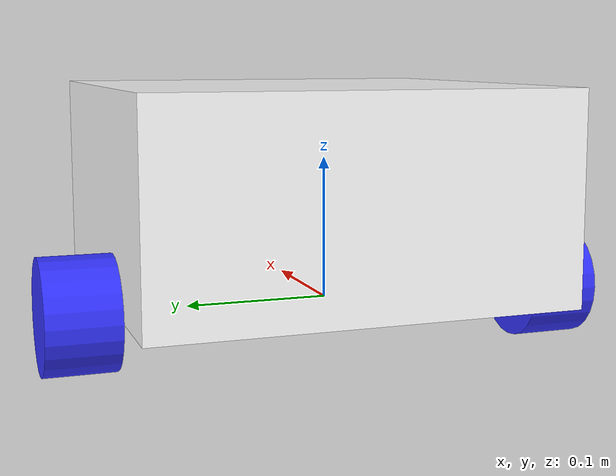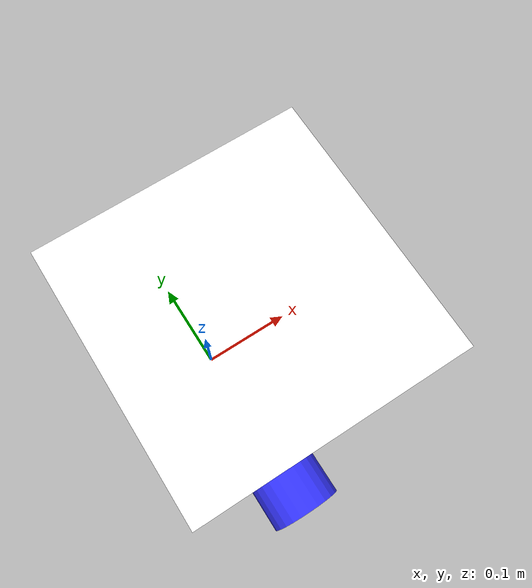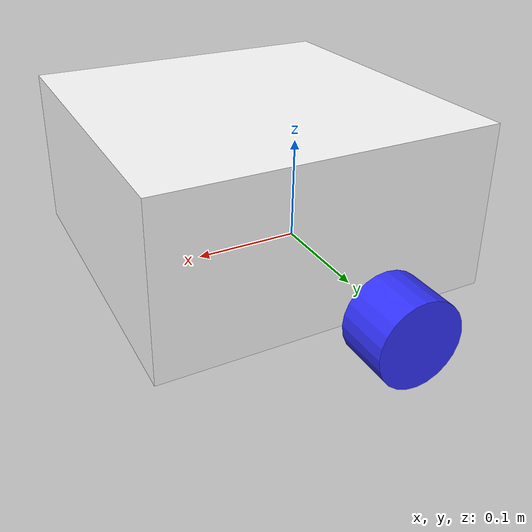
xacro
<?xml version="1.0"?>
<robot xmlns:xacro="http://www.ros.org/wiki/xacro">

    <!-- MATERIALS -->
    <material name="white">
        <color rgba="1 1 1 1"/>
    </material>

    <material name="orange">
        <color rgba="1 0.3 0.1 1"/>
    </material>

    <material name="blue">
        <color rgba="0.2 0.2 1 1"/>
    </material>

    <material name="black">
        <color rgba="0 0 0 1"/>
    </material>

    <material name="red">
        <color rgba="1 0 0 1"/>
    </material>

    <!-- PROPERTIES
    it would be good to add more to RE-RASSOR. Anywhere things are repeated should be a property -->
    <xacro:property name="wheel_radius" value="0.04"/>
    <xacro:property name="wheel_length" value="0.05"/>
    <xacro:property name="caster_wheel_radius" value="0.05"/>

    <!-- Essentially, a joint is the initial declaration (focused on relationship to other joints)
        and the link is the finer details such as visuals, geometry, material, and reference point (origin) -->

    <!-- BASES -->
    <link name="base_link"></link>

    <!-- CHASSIS -->
    <joint name="chassis_joint" type="fixed">
        <parent link="base_link"/>
        <child link="chassis"/>
        <origin xyz="-0.1 0 0"/> <!-- The joint origin defines the pose (position + orientation)
                                      of the child link relative to the parental link. These are offsets not coordinates -->
    </joint>

    <link name="chassis">
        <visual>
            <origin xyz="0.15 0 0.075" rpy="0 0 0"/> <!-- the pose of the geometry inside the link's own coordinate frame -->
            <geometry>
                <box size="0.3 0.3 0.15"/>
            </geometry>
            <material name="white"/>
        </visual>
        <collision>
            <origin xyz="0.15 0 0.075" rpy="0 0 0"/>
            <geometry>
                <box size="0.3 0.3 0.15"/>
            </geometry>
        </collision>
        <xacro:inertial_box mass="0.5" x="0.3" y="0.3" z="0.15">
            <origin xyz="0.15 0 0.075" rpy="0 0 0"/>
        </xacro:inertial_box>
    </link>

    <gazebo reference="chassis">
        <material>Gazebo/White</material>
    </gazebo>

    <!-- LEFT WHEEL -->
    <joint name="left_wheel_joint" type="continuous">
        <parent link="base_link"/>
        <child link="left_wheel"/>
        <origin xyz="0 0.175 0" rpy="-${pi/2} 0 0"/>
        <axis xyz="0 0 1"/>
        <limit  effort="5" velocity="20"/>
    </joint>

    <link name="left_wheel">
        <visual>
            <geometry>
                <cylinder radius="${wheel_radius}" length="${wheel_length}"/>
            </geometry>
            <material name="blue"/>
        </visual>
        <collision>
            <geometry>
                <cylinder radius="${wheel_radius}" length="${wheel_length}"/>
            </geometry>
        </collision>
        <xacro:inertial_cylinder mass="0.1" length="${wheel_length}" radius="${wheel_radius}">
            <origin xyz="0 0 0" rpy="0 0 0"/>
        </xacro:inertial_cylinder>
    </link>

    <gazebo reference="left_wheel">
        <material>Gazebo/Blue</material>
    </gazebo>

    <!-- RIGHT WHEEL -->
    <joint name="right_wheel_joint" type="continuous">
        <parent link="base_link"/>
        <child link="right_wheel"/>
        <origin xyz="0 -0.175 0" rpy="${pi/2} 0 0"/>
        <axis xyz="0 0 -1"/>
        <limit  effort="5" velocity="20"/>
    </joint>

    <link name="right_wheel">
        <visual>
            <geometry>
                <cylinder radius="${wheel_radius}" length="${wheel_length}"/>
            </geometry>
            <material name="blue"/>
        </visual>
        <collision>
            <geometry>
                <cylinder radius="${wheel_radius}" length="${wheel_length}"/>
            </geometry>
        </collision>
        <xacro:inertial_cylinder mass="0.1" length="${wheel_length}" radius="${wheel_radius}">
            <origin xyz="0 0 0" rpy="0 0 0"/>
        </xacro:inertial_cylinder>
    </link>

    <gazebo reference="left_wheel">
        <material>Gazebo/Blue</material>
    </gazebo>

    <!-- CASTER WHEEL -->
    <joint name="caster_wheel_joint" type="fixed">
        <parent link="chassis"/>
        <child link="caster_wheel"/>
        <origin xyz="0.24 0.0 0.0" rpy="0.0 0.0 0.0"/>
    </joint>

    <link name="caster_wheel">
        <visual>
            <geometry>
                <sphere radius="${caster_wheel_radius}"/>
            </geometry>
            <material name="black"/>
        </visual>
        <collision>
            <geometry>
                <sphere radius="${caster_wheel_radius}"/>
            </geometry>
        </collision>
        <xacro:inertial_sphere mass="0.1" radius="${caster_wheel_radius}">
            <origin xyz="0 0 0" rpy="0 0 0"/>
        </xacro:inertial_sphere>
    </link>

    <gazebo reference="caster_wheel">
        <material>Gazebo/Black</material>
        <mu1 value="0.001"/>
        <mu2 value="0.001"/>
    </gazebo>

</robot>
